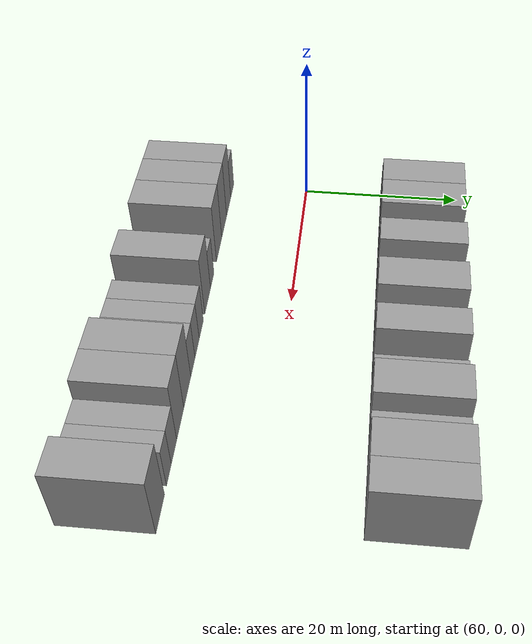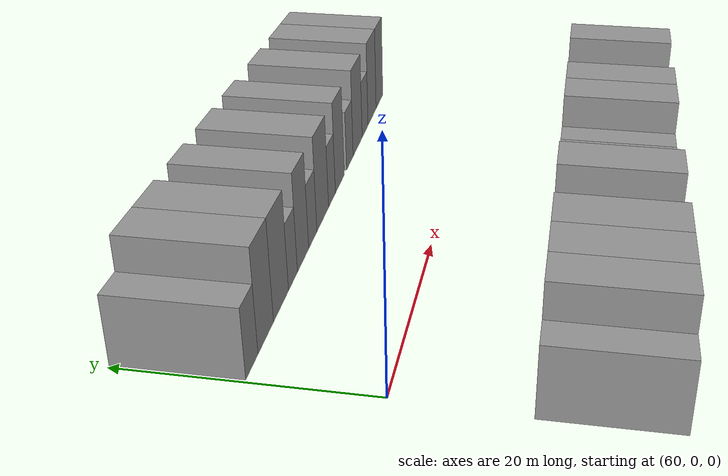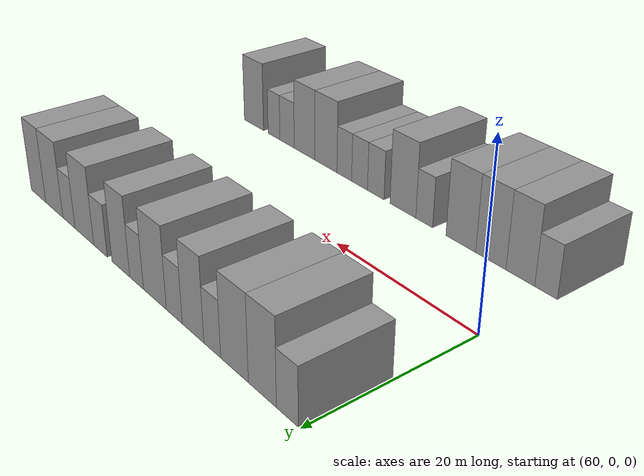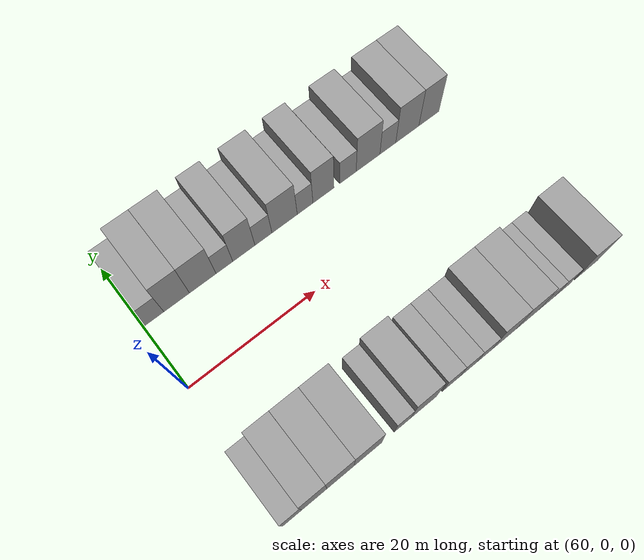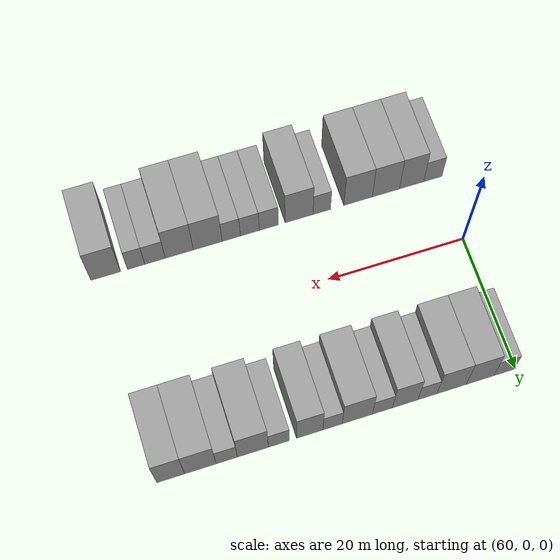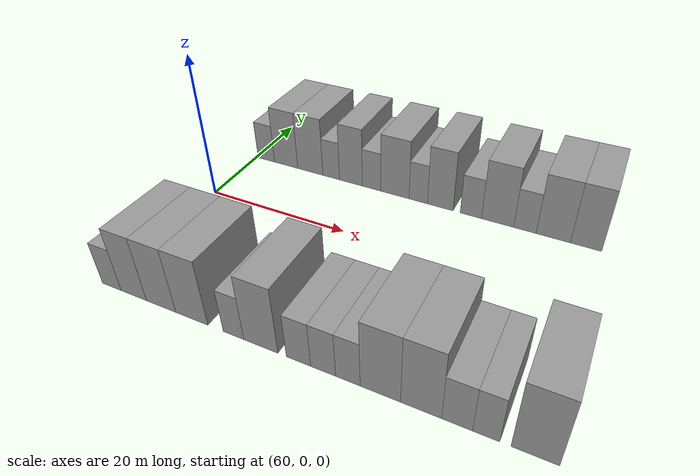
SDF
<sdf version="1.6">
 <world name="default">
  <model name="building_15">
   <static>1</static>
   <pose>61.7267 15.0000 0 0.000000 0.000000 1.570796</pose>
   <link name="link">
    <pose>0 0 3.00 0 0 0</pose>
    <collision name="collision"><geometry><box><size>10.0000 2.9189 6.0000</size></box></geometry></collision>
    <visual name="visual">
     <cast_shadows>0</cast_shadows>
     <geometry><box><size>10.0000 2.9189 6.0000</size></box></geometry>
     <material>
      <script>
       <uri>model://grey_wall/materials/scripts</uri>
       <uri>model://grey_wall/materials/textures</uri>
       <name>vrc/grey_wall</name>
      </script>
     </material>
    </visual>
   </link>
  </model>
  <model name="building_16">
   <static>1</static>
   <pose>65.1740 15.0000 0 0.000000 0.000000 1.570796</pose>
   <link name="link">
    <pose>0 0 4.50 0 0 0</pose>
    <collision name="collision"><geometry><box><size>10.0000 3.9758 9.0000</size></box></geometry></collision>
    <visual name="visual">
     <cast_shadows>0</cast_shadows>
     <geometry><box><size>10.0000 3.9758 9.0000</size></box></geometry>
     <material>
      <script>
       <uri>model://grey_wall/materials/scripts</uri>
       <uri>model://grey_wall/materials/textures</uri>
       <name>vrc/grey_wall</name>
      </script>
     </material>
    </visual>
   </link>
  </model>
  <model name="building_17">
   <static>1</static>
   <pose>69.2637 15.0000 0 0.000000 0.000000 1.570796</pose>
   <link name="link">
    <pose>0 0 4.50 0 0 0</pose>
    <collision name="collision"><geometry><box><size>10.0000 4.2034 9.0000</size></box></geometry></collision>
    <visual name="visual">
     <cast_shadows>0</cast_shadows>
     <geometry><box><size>10.0000 4.2034 9.0000</size></box></geometry>
     <material>
      <script>
       <uri>model://grey_wall/materials/scripts</uri>
       <uri>model://grey_wall/materials/textures</uri>
       <name>vrc/grey_wall</name>
      </script>
     </material>
    </visual>
   </link>
  </model>
  <model name="building_18">
   <static>1</static>
   <pose>72.7155 15.0000 0 0.000000 0.000000 1.570796</pose>
   <link name="link">
    <pose>0 0 3.00 0 0 0</pose>
    <collision name="collision"><geometry><box><size>10.0000 2.7002 6.0000</size></box></geometry></collision>
    <visual name="visual">
     <cast_shadows>0</cast_shadows>
     <geometry><box><size>10.0000 2.7002 6.0000</size></box></geometry>
     <material>
      <script>
       <uri>model://grey_wall/materials/scripts</uri>
       <uri>model://grey_wall/materials/textures</uri>
       <name>vrc/grey_wall</name>
      </script>
     </material>
    </visual>
   </link>
  </model>
  <model name="building_19">
   <static>1</static>
   <pose>75.8764 15.0000 0 0.000000 0.000000 1.570796</pose>
   <link name="link">
    <pose>0 0 4.50 0 0 0</pose>
    <collision name="collision"><geometry><box><size>10.0000 3.6217 9.0000</size></box></geometry></collision>
    <visual name="visual">
     <cast_shadows>0</cast_shadows>
     <geometry><box><size>10.0000 3.6217 9.0000</size></box></geometry>
     <material>
      <script>
       <uri>model://grey_wall/materials/scripts</uri>
       <uri>model://grey_wall/materials/textures</uri>
       <name>vrc/grey_wall</name>
      </script>
     </material>
    </visual>
   </link>
  </model>
  <model name="building_20">
   <static>1</static>
   <pose>79.0913 15.0000 0 0.000000 0.000000 1.570796</pose>
   <link name="link">
    <pose>0 0 3.00 0 0 0</pose>
    <collision name="collision"><geometry><box><size>10.0000 2.8080 6.0000</size></box></geometry></collision>
    <visual name="visual">
     <cast_shadows>0</cast_shadows>
     <geometry><box><size>10.0000 2.8080 6.0000</size></box></geometry>
     <material>
      <script>
       <uri>model://grey_wall/materials/scripts</uri>
       <uri>model://grey_wall/materials/textures</uri>
       <name>vrc/grey_wall</name>
      </script>
     </material>
    </visual>
   </link>
  </model>
  <model name="building_21">
   <static>1</static>
   <pose>82.6306 15.0000 0 0.000000 0.000000 1.570796</pose>
   <link name="link">
    <pose>0 0 4.50 0 0 0</pose>
    <collision name="collision"><geometry><box><size>10.0000 4.2707 9.0000</size></box></geometry></collision>
    <visual name="visual">
     <cast_shadows>0</cast_shadows>
     <geometry><box><size>10.0000 4.2707 9.0000</size></box></geometry>
     <material>
      <script>
       <uri>model://grey_wall/materials/scripts</uri>
       <uri>model://grey_wall/materials/textures</uri>
       <name>vrc/grey_wall</name>
      </script>
     </material>
    </visual>
   </link>
  </model>
  <model name="building_22">
   <static>1</static>
   <pose>86.1015 15.0000 0 0.000000 0.000000 1.570796</pose>
   <link name="link">
    <pose>0 0 3.00 0 0 0</pose>
    <collision name="collision"><geometry><box><size>10.0000 2.6711 6.0000</size></box></geometry></collision>
    <visual name="visual">
     <cast_shadows>0</cast_shadows>
     <geometry><box><size>10.0000 2.6711 6.0000</size></box></geometry>
     <material>
      <script>
       <uri>model://grey_wall/materials/scripts</uri>
       <uri>model://grey_wall/materials/textures</uri>
       <name>vrc/grey_wall</name>
      </script>
     </material>
    </visual>
   </link>
  </model>
  <model name="building_23">
   <static>1</static>
   <pose>89.2615 15.0000 0 0.000000 0.000000 1.570796</pose>
   <link name="link">
    <pose>0 0 4.50 0 0 0</pose>
    <collision name="collision"><geometry><box><size>10.0000 3.6487 9.0000</size></box></geometry></collision>
    <visual name="visual">
     <cast_shadows>0</cast_shadows>
     <geometry><box><size>10.0000 3.6487 9.0000</size></box></geometry>
     <material>
      <script>
       <uri>model://grey_wall/materials/scripts</uri>
       <uri>model://grey_wall/materials/textures</uri>
       <name>vrc/grey_wall</name>
      </script>
     </material>
    </visual>
   </link>
  </model>
  <model name="building_24">
   <static>1</static>
   <pose>93.5392 15.0000 0 0.000000 0.000000 1.570796</pose>
   <link name="link">
    <pose>0 0 3.00 0 0 0</pose>
    <collision name="collision"><geometry><box><size>10.0000 2.9068 6.0000</size></box></geometry></collision>
    <visual name="visual">
     <cast_shadows>0</cast_shadows>
     <geometry><box><size>10.0000 2.9068 6.0000</size></box></geometry>
     <material>
      <script>
       <uri>model://grey_wall/materials/scripts</uri>
       <uri>model://grey_wall/materials/textures</uri>
       <name>vrc/grey_wall</name>
      </script>
     </material>
    </visual>
   </link>
  </model>
  <model name="building_25">
   <static>1</static>
   <pose>97.1239 15.0000 0 0.000000 0.000000 1.570796</pose>
   <link name="link">
    <pose>0 0 4.50 0 0 0</pose>
    <collision name="collision"><geometry><box><size>10.0000 4.2625 9.0000</size></box></geometry></collision>
    <visual name="visual">
     <cast_shadows>0</cast_shadows>
     <geometry><box><size>10.0000 4.2625 9.0000</size></box></geometry>
     <material>
      <script>
       <uri>model://grey_wall/materials/scripts</uri>
       <uri>model://grey_wall/materials/textures</uri>
       <name>vrc/grey_wall</name>
      </script>
     </material>
    </visual>
   </link>
  </model>
  <model name="building_26">
   <static>1</static>
   <pose>100.7043 15.0000 0 0.000000 0.000000 1.570796</pose>
   <link name="link">
    <pose>0 0 3.00 0 0 0</pose>
    <collision name="collision"><geometry><box><size>10.0000 2.8983 6.0000</size></box></geometry></collision>
    <visual name="visual">
     <cast_shadows>0</cast_shadows>
     <geometry><box><size>10.0000 2.8983 6.0000</size></box></geometry>
     <material>
      <script>
       <uri>model://grey_wall/materials/scripts</uri>
       <uri>model://grey_wall/materials/textures</uri>
       <name>vrc/grey_wall</name>
      </script>
     </material>
    </visual>
   </link>
  </model>
  <model name="building_27">
   <static>1</static>
   <pose>104.2949 15.0000 0 0.000000 0.000000 1.570796</pose>
   <link name="link">
    <pose>0 0 4.50 0 0 0</pose>
    <collision name="collision"><geometry><box><size>10.0000 4.2830 9.0000</size></box></geometry></collision>
    <visual name="visual">
     <cast_shadows>0</cast_shadows>
     <geometry><box><size>10.0000 4.2830 9.0000</size></box></geometry>
     <material>
      <script>
       <uri>model://grey_wall/materials/scripts</uri>
       <uri>model://grey_wall/materials/textures</uri>
       <name>vrc/grey_wall</name>
      </script>
     </material>
    </visual>
   </link>
  </model>
  <model name="building_28">
   <static>1</static>
   <pose>108.3185 15.0000 0 0.000000 0.000000 1.570796</pose>
   <link name="link">
    <pose>0 0 4.50 0 0 0</pose>
    <collision name="collision"><geometry><box><size>10.0000 3.7640 9.0000</size></box></geometry></collision>
    <visual name="visual">
     <cast_shadows>0</cast_shadows>
     <geometry><box><size>10.0000 3.7640 9.0000</size></box></geometry>
     <material>
      <script>
       <uri>model://grey_wall/materials/scripts</uri>
       <uri>model://grey_wall/materials/textures</uri>
       <name>vrc/grey_wall</name>
      </script>
     </material>
    </visual>
   </link>
  </model>
  <model name="building_71">
   <static>1</static>
   <pose>60.8193 -15.0000 0 0.000000 0.000000 1.570796</pose>
   <link name="link">
    <pose>0 0 3.00 0 0 0</pose>
    <collision name="collision"><geometry><box><size>10.0000 2.7959 6.0000</size></box></geometry></collision>
    <visual name="visual">
     <cast_shadows>0</cast_shadows>
     <geometry><box><size>10.0000 2.7959 6.0000</size></box></geometry>
     <material>
      <script>
       <uri>model://grey_wall/materials/scripts</uri>
       <uri>model://grey_wall/materials/textures</uri>
       <name>vrc/grey_wall</name>
      </script>
     </material>
    </visual>
   </link>
  </model>
  <model name="building_72">
   <static>1</static>
   <pose>64.0634 -15.0000 0 0.000000 0.000000 1.570796</pose>
   <link name="link">
    <pose>0 0 4.50 0 0 0</pose>
    <collision name="collision"><geometry><box><size>10.0000 3.6923 9.0000</size></box></geometry></collision>
    <visual name="visual">
     <cast_shadows>0</cast_shadows>
     <geometry><box><size>10.0000 3.6923 9.0000</size></box></geometry>
     <material>
      <script>
       <uri>model://grey_wall/materials/scripts</uri>
       <uri>model://grey_wall/materials/textures</uri>
       <name>vrc/grey_wall</name>
      </script>
     </material>
    </visual>
   </link>
  </model>
  <model name="building_73">
   <static>1</static>
   <pose>67.9667 -15.0000 0 0.000000 0.000000 1.570796</pose>
   <link name="link">
    <pose>0 0 4.50 0 0 0</pose>
    <collision name="collision"><geometry><box><size>10.0000 4.1142 9.0000</size></box></geometry></collision>
    <visual name="visual">
     <cast_shadows>0</cast_shadows>
     <geometry><box><size>10.0000 4.1142 9.0000</size></box></geometry>
     <material>
      <script>
       <uri>model://grey_wall/materials/scripts</uri>
       <uri>model://grey_wall/materials/textures</uri>
       <name>vrc/grey_wall</name>
      </script>
     </material>
    </visual>
   </link>
  </model>
  <model name="building_74">
   <static>1</static>
   <pose>72.1611 -15.0000 0 0.000000 0.000000 1.570796</pose>
   <link name="link">
    <pose>0 0 4.50 0 0 0</pose>
    <collision name="collision"><geometry><box><size>10.0000 4.2747 9.0000</size></box></geometry></collision>
    <visual name="visual">
     <cast_shadows>0</cast_shadows>
     <geometry><box><size>10.0000 4.2747 9.0000</size></box></geometry>
     <material>
      <script>
       <uri>model://grey_wall/materials/scripts</uri>
       <uri>model://grey_wall/materials/textures</uri>
       <name>vrc/grey_wall</name>
      </script>
     </material>
    </visual>
   </link>
  </model>
  <model name="building_75">
   <static>1</static>
   <pose>77.5964 -15.0000 0 0.000000 0.000000 1.570796</pose>
   <link name="link">
    <pose>0 0 3.00 0 0 0</pose>
    <collision name="collision"><geometry><box><size>10.0000 2.5960 6.0000</size></box></geometry></collision>
    <visual name="visual">
     <cast_shadows>0</cast_shadows>
     <geometry><box><size>10.0000 2.5960 6.0000</size></box></geometry>
     <material>
      <script>
       <uri>model://grey_wall/materials/scripts</uri>
       <uri>model://grey_wall/materials/textures</uri>
       <name>vrc/grey_wall</name>
      </script>
     </material>
    </visual>
   </link>
  </model>
  <model name="building_76">
   <static>1</static>
   <pose>80.9756 -15.0000 0 0.000000 0.000000 1.570796</pose>
   <link name="link">
    <pose>0 0 4.50 0 0 0</pose>
    <collision name="collision"><geometry><box><size>10.0000 4.1623 9.0000</size></box></geometry></collision>
    <visual name="visual">
     <cast_shadows>0</cast_shadows>
     <geometry><box><size>10.0000 4.1623 9.0000</size></box></geometry>
     <material>
      <script>
       <uri>model://grey_wall/materials/scripts</uri>
       <uri>model://grey_wall/materials/textures</uri>
       <name>vrc/grey_wall</name>
      </script>
     </material>
    </visual>
   </link>
  </model>
  <model name="building_77">
   <static>1</static>
   <pose>85.4653 -15.0000 0 0.000000 0.000000 1.570796</pose>
   <link name="link">
    <pose>0 0 3.00 0 0 0</pose>
    <collision name="collision"><geometry><box><size>10.0000 2.8170 6.0000</size></box></geometry></collision>
    <visual name="visual">
     <cast_shadows>0</cast_shadows>
     <geometry><box><size>10.0000 2.8170 6.0000</size></box></geometry>
     <material>
      <script>
       <uri>model://grey_wall/materials/scripts</uri>
       <uri>model://grey_wall/materials/textures</uri>
       <name>vrc/grey_wall</name>
      </script>
     </material>
    </visual>
   </link>
  </model>
  <model name="building_78">
   <static>1</static>
   <pose>88.2706 -15.0000 0 0.000000 0.000000 1.570796</pose>
   <link name="link">
    <pose>0 0 3.00 0 0 0</pose>
    <collision name="collision"><geometry><box><size>10.0000 2.7937 6.0000</size></box></geometry></collision>
    <visual name="visual">
     <cast_shadows>0</cast_shadows>
     <geometry><box><size>10.0000 2.7937 6.0000</size></box></geometry>
     <material>
      <script>
       <uri>model://grey_wall/materials/scripts</uri>
       <uri>model://grey_wall/materials/textures</uri>
       <name>vrc/grey_wall</name>
      </script>
     </material>
    </visual>
   </link>
  </model>
  <model name="building_79">
   <static>1</static>
   <pose>91.0071 -15.0000 0 0.000000 0.000000 1.570796</pose>
   <link name="link">
    <pose>0 0 3.00 0 0 0</pose>
    <collision name="collision"><geometry><box><size>10.0000 2.6793 6.0000</size></box></geometry></collision>
    <visual name="visual">
     <cast_shadows>0</cast_shadows>
     <geometry><box><size>10.0000 2.6793 6.0000</size></box></geometry>
     <material>
      <script>
       <uri>model://grey_wall/materials/scripts</uri>
       <uri>model://grey_wall/materials/textures</uri>
       <name>vrc/grey_wall</name>
      </script>
     </material>
    </visual>
   </link>
  </model>
  <model name="building_80">
   <static>1</static>
   <pose>94.4541 -15.0000 0 0.000000 0.000000 1.570796</pose>
   <link name="link">
    <pose>0 0 4.50 0 0 0</pose>
    <collision name="collision"><geometry><box><size>10.0000 4.2146 9.0000</size></box></geometry></collision>
    <visual name="visual">
     <cast_shadows>0</cast_shadows>
     <geometry><box><size>10.0000 4.2146 9.0000</size></box></geometry>
     <material>
      <script>
       <uri>model://grey_wall/materials/scripts</uri>
       <uri>model://grey_wall/materials/textures</uri>
       <name>vrc/grey_wall</name>
      </script>
     </material>
    </visual>
   </link>
  </model>
  <model name="building_81">
   <static>1</static>
   <pose>98.6011 -15.0000 0 0.000000 0.000000 1.570796</pose>
   <link name="link">
    <pose>0 0 4.50 0 0 0</pose>
    <collision name="collision"><geometry><box><size>10.0000 4.0794 9.0000</size></box></geometry></collision>
    <visual name="visual">
     <cast_shadows>0</cast_shadows>
     <geometry><box><size>10.0000 4.0794 9.0000</size></box></geometry>
     <material>
      <script>
       <uri>model://grey_wall/materials/scripts</uri>
       <uri>model://grey_wall/materials/textures</uri>
       <name>vrc/grey_wall</name>
      </script>
     </material>
    </visual>
   </link>
  </model>
  <model name="building_82">
   <static>1</static>
   <pose>102.1174 -15.0000 0 0.000000 0.000000 1.570796</pose>
   <link name="link">
    <pose>0 0 3.00 0 0 0</pose>
    <collision name="collision"><geometry><box><size>10.0000 2.9532 6.0000</size></box></geometry></collision>
    <visual name="visual">
     <cast_shadows>0</cast_shadows>
     <geometry><box><size>10.0000 2.9532 6.0000</size></box></geometry>
     <material>
      <script>
       <uri>model://grey_wall/materials/scripts</uri>
       <uri>model://grey_wall/materials/textures</uri>
       <name>vrc/grey_wall</name>
      </script>
     </material>
    </visual>
   </link>
  </model>
  <model name="building_83">
   <static>1</static>
   <pose>104.8443 -15.0000 0 0.000000 0.000000 1.570796</pose>
   <link name="link">
    <pose>0 0 3.00 0 0 0</pose>
    <collision name="collision"><geometry><box><size>10.0000 2.5005 6.0000</size></box></geometry></collision>
    <visual name="visual">
     <cast_shadows>0</cast_shadows>
     <geometry><box><size>10.0000 2.5005 6.0000</size></box></geometry>
     <material>
      <script>
       <uri>model://grey_wall/materials/scripts</uri>
       <uri>model://grey_wall/materials/textures</uri>
       <name>vrc/grey_wall</name>
      </script>
     </material>
    </visual>
   </link>
  </model>
  <model name="building_84">
   <static>1</static>
   <pose>109.2222 -15.0000 0 0.000000 0.000000 1.570796</pose>
   <link name="link">
    <pose>0 0 4.50 0 0 0</pose>
    <collision name="collision"><geometry><box><size>10.0000 4.2554 9.0000</size></box></geometry></collision>
    <visual name="visual">
     <cast_shadows>0</cast_shadows>
     <geometry><box><size>10.0000 4.2554 9.0000</size></box></geometry>
     <material>
      <script>
       <uri>model://grey_wall/materials/scripts</uri>
       <uri>model://grey_wall/materials/textures</uri>
       <name>vrc/grey_wall</name>
      </script>
     </material>
    </visual>
   </link>
  </model>
 </world>
</sdf>
